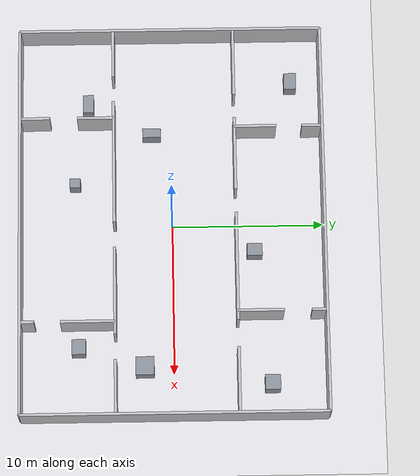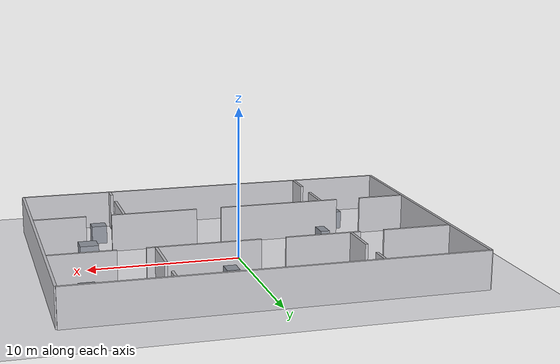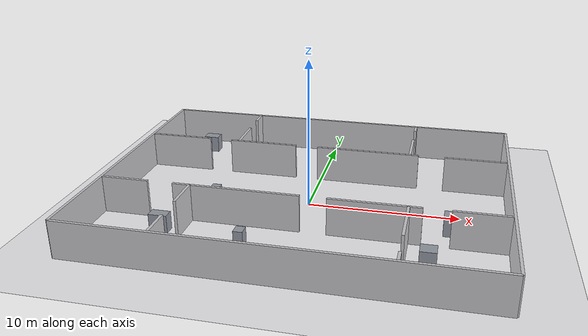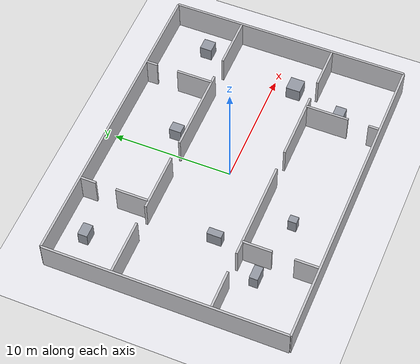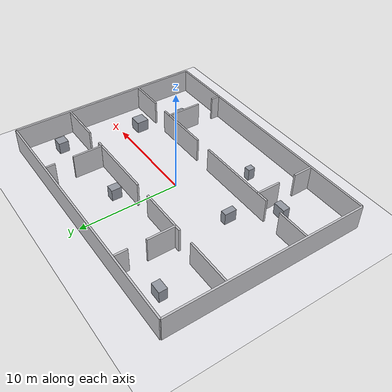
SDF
<?xml version="1.0"?>
<sdf version="1.9"><world name="new_room_world">
<plugin filename="gz-sim-physics-system" name="gz::sim::systems::Physics"/><plugin filename="gz-sim-user-commands-system" name="gz::sim::systems::UserCommands"/><plugin filename="gz-sim-scene-broadcaster-system" name="gz::sim::systems::SceneBroadcaster"/><plugin filename="gz-sim-sensors-system" name="gz::sim::systems::Sensors"><render_engine>ogre2</render_engine></plugin><plugin filename="gz-sim-imu-system" name="gz::sim::systems::Imu"/>
<physics name="new_room_realtime" type="ignored"><max_step_size>0.001</max_step_size><real_time_factor>1</real_time_factor></physics><gravity>0 0 -9.8</gravity><scene><ambient>0.85 0.85 0.87 1</ambient><background>0.68 0.68 0.71 1</background><shadows>false</shadows></scene><light name="sun" type="directional"><cast_shadows>false</cast_shadows><pose>0 0 10 0 0 0</pose><diffuse>0.95 0.95 0.95 1</diffuse><direction>-0.3 0.2 -1</direction></light>
<model name="new_room_ground"><static>true</static><link name="ground_link"><collision name="ground_collision"><geometry><plane><normal>0 0 1</normal><size>40 32</size></plane></geometry></collision><visual name="ground_visual"><geometry><plane><normal>0 0 1</normal><size>40 32</size></plane></geometry><material><ambient>0.92 0.92 0.94 1</ambient><diffuse>0.92 0.92 0.94 1</diffuse></material></visual></link></model>
<model name="mini_hospital_structure"><static>true</static><link name="structure">
<collision name="mx048_c000"><pose>0 10 1.25 0 0 0</pose><geometry><box><size>26 0.18 2.5</size></box></geometry></collision><visual name="mx048_v000"><pose>0 10 1.25 0 0 0</pose><geometry><box><size>26 0.18 2.5</size></box></geometry><material><ambient>0.78 0.78 0.80 1</ambient><diffuse>0.78 0.78 0.80 1</diffuse></material></visual>
<collision name="mx048_c001"><pose>0 -10 1.25 0 0 0</pose><geometry><box><size>26 0.18 2.5</size></box></geometry></collision><visual name="mx048_v001"><pose>0 -10 1.25 0 0 0</pose><geometry><box><size>26 0.18 2.5</size></box></geometry><material><ambient>0.78 0.78 0.80 1</ambient><diffuse>0.78 0.78 0.80 1</diffuse></material></visual>
<collision name="mx048_c002"><pose>-13 0 1.25 0 0 0</pose><geometry><box><size>0.18 20 2.5</size></box></geometry></collision><visual name="mx048_v002"><pose>-13 0 1.25 0 0 0</pose><geometry><box><size>0.18 20 2.5</size></box></geometry><material><ambient>0.78 0.78 0.80 1</ambient><diffuse>0.78 0.78 0.80 1</diffuse></material></visual>
<collision name="mx048_c003"><pose>13 0 1.25 0 0 0</pose><geometry><box><size>0.18 20 2.5</size></box></geometry></collision><visual name="mx048_v003"><pose>13 0 1.25 0 0 0</pose><geometry><box><size>0.18 20 2.5</size></box></geometry><material><ambient>0.78 0.78 0.80 1</ambient><diffuse>0.78 0.78 0.80 1</diffuse></material></visual>
<collision name="mx048_c004"><pose>-10.655 4.2 1.25 0 0 0</pose><geometry><box><size>4.51 0.18 2.5</size></box></geometry></collision><visual name="mx048_v004"><pose>-10.655 4.2 1.25 0 0 0</pose><geometry><box><size>4.51 0.18 2.5</size></box></geometry><material><ambient>0.78 0.78 0.80 1</ambient><diffuse>0.78 0.78 0.80 1</diffuse></material></visual>
<collision name="mx048_c005"><pose>-4.35 4.2 1.25 0 0 0</pose><geometry><box><size>4.9 0.18 2.5</size></box></geometry></collision><visual name="mx048_v005"><pose>-4.35 4.2 1.25 0 0 0</pose><geometry><box><size>4.9 0.18 2.5</size></box></geometry><material><ambient>0.78 0.78 0.80 1</ambient><diffuse>0.78 0.78 0.80 1</diffuse></material></visual>
<collision name="mx048_c006"><pose>3.3 4.2 1.25 0 0 0</pose><geometry><box><size>7.2 0.18 2.5</size></box></geometry></collision><visual name="mx048_v006"><pose>3.3 4.2 1.25 0 0 0</pose><geometry><box><size>7.2 0.18 2.5</size></box></geometry><material><ambient>0.78 0.78 0.80 1</ambient><diffuse>0.78 0.78 0.80 1</diffuse></material></visual>
<collision name="mx048_c007"><pose>10.805 4.2 1.25 0 0 0</pose><geometry><box><size>4.21 0.18 2.5</size></box></geometry></collision><visual name="mx048_v007"><pose>10.805 4.2 1.25 0 0 0</pose><geometry><box><size>4.21 0.18 2.5</size></box></geometry><material><ambient>0.78 0.78 0.80 1</ambient><diffuse>0.78 0.78 0.80 1</diffuse></material></visual>
<collision name="mx048_c008"><pose>-11.33 -3.8 1.25 0 0 0</pose><geometry><box><size>3.16 0.18 2.5</size></box></geometry></collision><visual name="mx048_v008"><pose>-11.33 -3.8 1.25 0 0 0</pose><geometry><box><size>3.16 0.18 2.5</size></box></geometry><material><ambient>0.78 0.78 0.80 1</ambient><diffuse>0.78 0.78 0.80 1</diffuse></material></visual>
<collision name="mx048_c009"><pose>-3.9 -3.8 1.25 0 0 0</pose><geometry><box><size>8.3 0.18 2.5</size></box></geometry></collision><visual name="mx048_v009"><pose>-3.9 -3.8 1.25 0 0 0</pose><geometry><box><size>8.3 0.18 2.5</size></box></geometry><material><ambient>0.78 0.78 0.80 1</ambient><diffuse>0.78 0.78 0.80 1</diffuse></material></visual>
<collision name="mx048_c010"><pose>4.85 -3.8 1.25 0 0 0</pose><geometry><box><size>5.8 0.18 2.5</size></box></geometry></collision><visual name="mx048_v010"><pose>4.85 -3.8 1.25 0 0 0</pose><geometry><box><size>5.8 0.18 2.5</size></box></geometry><material><ambient>0.78 0.78 0.80 1</ambient><diffuse>0.78 0.78 0.80 1</diffuse></material></visual>
<collision name="mx048_c011"><pose>11.18 -3.8 1.25 0 0 0</pose><geometry><box><size>3.46 0.18 2.5</size></box></geometry></collision><visual name="mx048_v011"><pose>11.18 -3.8 1.25 0 0 0</pose><geometry><box><size>3.46 0.18 2.5</size></box></geometry><material><ambient>0.78 0.78 0.80 1</ambient><diffuse>0.78 0.78 0.80 1</diffuse></material></visual>
<collision name="mx048_c012"><pose>-6.2 5.575 1.25 0 0 0</pose><geometry><box><size>0.18 2.75 2.5</size></box></geometry></collision><visual name="mx048_v012"><pose>-6.2 5.575 1.25 0 0 0</pose><geometry><box><size>0.18 2.75 2.5</size></box></geometry><material><ambient>0.78 0.78 0.80 1</ambient><diffuse>0.78 0.78 0.80 1</diffuse></material></visual>
<collision name="mx048_c013"><pose>-6.2 9.28 1.25 0 0 0</pose><geometry><box><size>0.18 1.26 2.5</size></box></geometry></collision><visual name="mx048_v013"><pose>-6.2 9.28 1.25 0 0 0</pose><geometry><box><size>0.18 1.26 2.5</size></box></geometry><material><ambient>0.78 0.78 0.80 1</ambient><diffuse>0.78 0.78 0.80 1</diffuse></material></visual>
<collision name="mx048_c014"><pose>6.3 5.7 1.25 0 0 0</pose><geometry><box><size>0.18 3 2.5</size></box></geometry></collision><visual name="mx048_v014"><pose>6.3 5.7 1.25 0 0 0</pose><geometry><box><size>0.18 3 2.5</size></box></geometry><material><ambient>0.78 0.78 0.80 1</ambient><diffuse>0.78 0.78 0.80 1</diffuse></material></visual>
<collision name="mx048_c015"><pose>6.3 9.455 1.25 0 0 0</pose><geometry><box><size>0.18 0.91 2.5</size></box></geometry></collision><visual name="mx048_v015"><pose>6.3 9.455 1.25 0 0 0</pose><geometry><box><size>0.18 0.91 2.5</size></box></geometry><material><ambient>0.78 0.78 0.80 1</ambient><diffuse>0.78 0.78 0.80 1</diffuse></material></visual>
<collision name="mx048_c016"><pose>-6.9 -8.955 1.25 0 0 0</pose><geometry><box><size>0.18 1.91 2.5</size></box></geometry></collision><visual name="mx048_v016"><pose>-6.9 -8.955 1.25 0 0 0</pose><geometry><box><size>0.18 1.91 2.5</size></box></geometry><material><ambient>0.78 0.78 0.80 1</ambient><diffuse>0.78 0.78 0.80 1</diffuse></material></visual>
<collision name="mx048_c017"><pose>-6.9 -5 1.25 0 0 0</pose><geometry><box><size>0.18 2.4 2.5</size></box></geometry></collision><visual name="mx048_v017"><pose>-6.9 -5 1.25 0 0 0</pose><geometry><box><size>0.18 2.4 2.5</size></box></geometry><material><ambient>0.78 0.78 0.80 1</ambient><diffuse>0.78 0.78 0.80 1</diffuse></material></visual>
<collision name="mx048_c018"><pose>6.9 -9.48 1.25 0 0 0</pose><geometry><box><size>0.18 0.86 2.5</size></box></geometry></collision><visual name="mx048_v018"><pose>6.9 -9.48 1.25 0 0 0</pose><geometry><box><size>0.18 0.86 2.5</size></box></geometry><material><ambient>0.78 0.78 0.80 1</ambient><diffuse>0.78 0.78 0.80 1</diffuse></material></visual>
<collision name="mx048_c019"><pose>6.9 -5.575 1.25 0 0 0</pose><geometry><box><size>0.18 3.55 2.5</size></box></geometry></collision><visual name="mx048_v019"><pose>6.9 -5.575 1.25 0 0 0</pose><geometry><box><size>0.18 3.55 2.5</size></box></geometry><material><ambient>0.78 0.78 0.80 1</ambient><diffuse>0.78 0.78 0.80 1</diffuse></material></visual>
<collision name="mx048_c020"><pose>-9.7 8 0.6 0 0 0</pose><geometry><box><size>1.1 0.8 1.2</size></box></geometry></collision><visual name="mx048_v020"><pose>-9.7 8 0.6 0 0 0</pose><geometry><box><size>1.1 0.8 1.2</size></box></geometry><material><ambient>0.58 0.60 0.64 1</ambient><diffuse>0.58 0.60 0.64 1</diffuse></material></visual>
<collision name="mx048_c021"><pose>1.9 5.4 0.6 0 0 0</pose><geometry><box><size>0.8 1 1.2</size></box></geometry></collision><visual name="mx048_v021"><pose>1.9 5.4 0.6 0 0 0</pose><geometry><box><size>0.8 1 1.2</size></box></geometry><material><ambient>0.58 0.60 0.64 1</ambient><diffuse>0.58 0.60 0.64 1</diffuse></material></visual>
<collision name="mx048_c022"><pose>10.8 6.4 0.6 0 0 0</pose><geometry><box><size>1 1 1.2</size></box></geometry></collision><visual name="mx048_v022"><pose>10.8 6.4 0.6 0 0 0</pose><geometry><box><size>1 1 1.2</size></box></geometry><material><ambient>0.58 0.60 0.64 1</ambient><diffuse>0.58 0.60 0.64 1</diffuse></material></visual>
<collision name="mx048_c023"><pose>-8.3 -5.5 0.6 0 0 0</pose><geometry><box><size>1.2 0.7 1.2</size></box></geometry></collision><visual name="mx048_v023"><pose>-8.3 -5.5 0.6 0 0 0</pose><geometry><box><size>1.2 0.7 1.2</size></box></geometry><material><ambient>0.58 0.60 0.64 1</ambient><diffuse>0.58 0.60 0.64 1</diffuse></material></visual>
<collision name="mx048_c024"><pose>-2.8 -6.4 0.6 0 0 0</pose><geometry><box><size>0.6 0.7 1.2</size></box></geometry></collision><visual name="mx048_v024"><pose>-2.8 -6.4 0.6 0 0 0</pose><geometry><box><size>0.6 0.7 1.2</size></box></geometry><material><ambient>0.58 0.60 0.64 1</ambient><diffuse>0.58 0.60 0.64 1</diffuse></material></visual>
<collision name="mx048_c025"><pose>8.3 -6.2 0.6 0 0 0</pose><geometry><box><size>1 0.9 1.2</size></box></geometry></collision><visual name="mx048_v025"><pose>8.3 -6.2 0.6 0 0 0</pose><geometry><box><size>1 0.9 1.2</size></box></geometry><material><ambient>0.58 0.60 0.64 1</ambient><diffuse>0.58 0.60 0.64 1</diffuse></material></visual>
<collision name="mx048_c026"><pose>-6.2 -1.3 0.6 0 0 0</pose><geometry><box><size>0.6 1.2 1.2</size></box></geometry></collision><visual name="mx048_v026"><pose>-6.2 -1.3 0.6 0 0 0</pose><geometry><box><size>0.6 1.2 1.2</size></box></geometry><material><ambient>0.58 0.60 0.64 1</ambient><diffuse>0.58 0.60 0.64 1</diffuse></material></visual>
<collision name="mx048_c027"><pose>9.6 -1.9 0.6 0 0 0</pose><geometry><box><size>1.2 1.2 1.2</size></box></geometry></collision><visual name="mx048_v027"><pose>9.6 -1.9 0.6 0 0 0</pose><geometry><box><size>1.2 1.2 1.2</size></box></geometry><material><ambient>0.58 0.60 0.64 1</ambient><diffuse>0.58 0.60 0.64 1</diffuse></material></visual>
</link></model></world></sdf>
